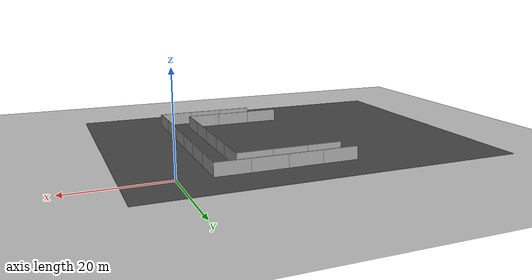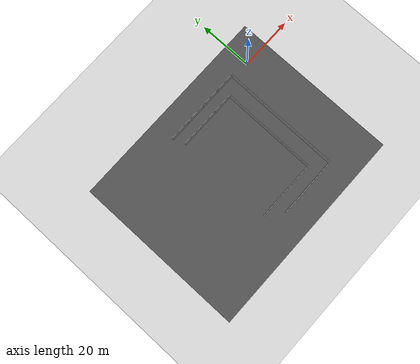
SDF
<sdf version="1.6">
 <world name="default">
  <model name="ground_plane">
   <static>1</static>
   <link name="link">
    <collision name="collision">
     <geometry><plane><normal>0 0 1</normal><size>100 100</size></plane></geometry>
     <surface>
      <contact><collide_bitmask>65535</collide_bitmask></contact>
      <friction><ode><mu>100</mu><mu2>50</mu2></ode></friction>
     </surface>
    </collision>
    <visual name="visual">
     <cast_shadows>0</cast_shadows>
     <geometry><plane><normal>0 0 1</normal><size>100 100</size></plane></geometry>
     <material>
      <script><uri>file://media/materials/scripts/gazebo.material</uri><name>Gazebo/Grey</name></script>
     </material>
    </visual>
   </link>
  </model>
  <model name="grey_wall_clone_6_clone_8">
   <static>1</static>
   <link name="link">
    <pose>0 0 1.4 0 -0 0</pose>
    <collision name="collision"><geometry><box><size>7.5 0.2 2.8</size></box></geometry></collision>
    <visual name="visual">
     <cast_shadows>0</cast_shadows>
     <geometry><box><size>7.5 0.2 2.8</size></box></geometry>
     <material>
      <script>
       <uri>model://grey_wall/materials/scripts</uri>
       <uri>model://grey_wall/materials/textures</uri>
       <name>vrc/grey_wall</name>
      </script>
     </material>
    </visual>
   </link>
   <pose>-10.4256 0.797416 0 0 -0 0</pose>
  </model>
  <model name="asphalt_plane">
   <static>1</static>
   <link name="link">
    <collision name="collision"><geometry><box><size>77.647 62.8353 0.1</size></box></geometry></collision>
    <visual name="visual">
     <cast_shadows>0</cast_shadows>
     <geometry><box><size>77.647 62.8353 0.1</size></box></geometry>
     <material>
      <script>
       <uri>model://asphalt_plane/materials/scripts</uri>
       <uri>model://asphalt_plane/materials/textures</uri>
       <name>vrc/asphalt</name>
      </script>
     </material>
    </visual>
   </link>
   <pose>-28.9718 -21.6905 0 0 -0 0</pose>
  </model>
  <model name="grey_wall_clone_6_clone_8_clone">
   <static>1</static>
   <link name="link">
    <pose>0 0 1.4 0 -0 0</pose>
    <collision name="collision"><geometry><box><size>7.5 0.2 2.8</size></box></geometry></collision>
    <visual name="visual">
     <cast_shadows>0</cast_shadows>
     <geometry><box><size>7.5 0.2 2.8</size></box></geometry>
     <material>
      <script>
       <uri>model://grey_wall/materials/scripts</uri>
       <uri>model://grey_wall/materials/textures</uri>
       <name>vrc/grey_wall</name>
      </script>
     </material>
    </visual>
   </link>
   <pose>-17.6869 0.815596 0 0 -0 0</pose>
  </model>
  <model name="grey_wall_clone_6_clone_8_clone_0">
   <static>1</static>
   <link name="link">
    <pose>0 0 1.4 0 -0 0</pose>
    <collision name="collision"><geometry><box><size>7.5 0.2 2.8</size></box></geometry></collision>
    <visual name="visual">
     <cast_shadows>0</cast_shadows>
     <geometry><box><size>7.5 0.2 2.8</size></box></geometry>
     <material>
      <script>
       <uri>model://grey_wall/materials/scripts</uri>
       <uri>model://grey_wall/materials/textures</uri>
       <name>vrc/grey_wall</name>
      </script>
     </material>
    </visual>
   </link>
   <pose>-25.0194 0.805602 0 0 -0 0</pose>
  </model>
  <model name="grey_wall_clone_6_clone_8_clone_1">
   <static>1</static>
   <link name="link">
    <pose>0 0 1.4 0 -0 0</pose>
    <collision name="collision"><geometry><box><size>7.5 0.2 2.8</size></box></geometry></collision>
    <visual name="visual">
     <cast_shadows>0</cast_shadows>
     <geometry><box><size>7.5 0.2 2.8</size></box></geometry>
     <material>
      <script>
       <uri>model://grey_wall/materials/scripts</uri>
       <uri>model://grey_wall/materials/textures</uri>
       <name>vrc/grey_wall</name>
      </script>
     </material>
    </visual>
   </link>
   <pose>-32.4838 0.814762 0 0 -0 0</pose>
  </model>
  <model name="grey_wall_clone_6_clone_8_clone_5">
   <static>1</static>
   <link name="link">
    <pose>0 0 1.4 0 -0 0</pose>
    <collision name="collision"><geometry><box><size>7.5 0.2 2.8</size></box></geometry></collision>
    <visual name="visual">
     <cast_shadows>0</cast_shadows>
     <geometry><box><size>7.5 0.2 2.8</size></box></geometry>
     <material>
      <script>
       <uri>model://grey_wall/materials/scripts</uri>
       <uri>model://grey_wall/materials/textures</uri>
       <name>vrc/grey_wall</name>
      </script>
     </material>
    </visual>
   </link>
   <pose>-6.80481 -2.85443 0 0 -0 1.56305</pose>
  </model>
  <model name="grey_wall_clone_6_clone_8_clone_5_clone">
   <static>1</static>
   <link name="link">
    <pose>0 0 1.4 0 -0 0</pose>
    <collision name="collision"><geometry><box><size>7.5 0.2 2.8</size></box></geometry></collision>
    <visual name="visual">
     <cast_shadows>0</cast_shadows>
     <geometry><box><size>7.5 0.2 2.8</size></box></geometry>
     <material>
      <script>
       <uri>model://grey_wall/materials/scripts</uri>
       <uri>model://grey_wall/materials/textures</uri>
       <name>vrc/grey_wall</name>
      </script>
     </material>
    </visual>
   </link>
   <pose>-6.87872 -9.95686 0 0 -0 1.56305</pose>
  </model>
  <model name="grey_wall_clone_6_clone_8_clone_5_clone_0">
   <static>1</static>
   <link name="link">
    <pose>0 0 1.4 0 -0 0</pose>
    <collision name="collision"><geometry><box><size>7.5 0.2 2.8</size></box></geometry></collision>
    <visual name="visual">
     <cast_shadows>0</cast_shadows>
     <geometry><box><size>7.5 0.2 2.8</size></box></geometry>
     <material>
      <script>
       <uri>model://grey_wall/materials/scripts</uri>
       <uri>model://grey_wall/materials/textures</uri>
       <name>vrc/grey_wall</name>
      </script>
     </material>
    </visual>
   </link>
   <pose>-6.9205 -17.348 0 0 -0 1.56305</pose>
  </model>
  <model name="grey_wall_clone_6_clone_8_clone_5_clone_1">
   <static>1</static>
   <link name="link">
    <pose>0 0 1.4 0 -0 0</pose>
    <collision name="collision"><geometry><box><size>7.5 0.2 2.8</size></box></geometry></collision>
    <visual name="visual">
     <cast_shadows>0</cast_shadows>
     <geometry><box><size>7.5 0.2 2.8</size></box></geometry>
     <material>
      <script>
       <uri>model://grey_wall/materials/scripts</uri>
       <uri>model://grey_wall/materials/textures</uri>
       <name>vrc/grey_wall</name>
      </script>
     </material>
    </visual>
   </link>
   <pose>-6.97589 -24.6171 0 0 -0 1.56305</pose>
  </model>
  <model name="grey_wall_clone_6_clone_8_clone_5_clone_2">
   <static>1</static>
   <link name="link">
    <pose>0 0 1.4 0 -0 0</pose>
    <collision name="collision"><geometry><box><size>7.5 0.2 2.8</size></box></geometry></collision>
    <visual name="visual">
     <cast_shadows>0</cast_shadows>
     <geometry><box><size>7.5 0.2 2.8</size></box></geometry>
     <material>
      <script>
       <uri>model://grey_wall/materials/scripts</uri>
       <uri>model://grey_wall/materials/textures</uri>
       <name>vrc/grey_wall</name>
      </script>
     </material>
    </visual>
   </link>
   <pose>-7.02281 -32.0062 0 0 -0 1.56305</pose>
  </model>
  <model name="grey_wall_clone_6_clone_8_clone_5_clone_3">
   <static>1</static>
   <link name="link">
    <pose>0 0 1.4 0 -0 0</pose>
    <collision name="collision"><geometry><box><size>7.5 0.2 2.8</size></box></geometry></collision>
    <visual name="visual">
     <cast_shadows>0</cast_shadows>
     <geometry><box><size>7.5 0.2 2.8</size></box></geometry>
     <material>
      <script>
       <uri>model://grey_wall/materials/scripts</uri>
       <uri>model://grey_wall/materials/textures</uri>
       <name>vrc/grey_wall</name>
      </script>
     </material>
    </visual>
   </link>
   <pose>-7.09384 -39.4607 0 0 -0 1.56305</pose>
  </model>
  <model name="grey_wall_clone_6_clone_8_clone_4_clone_3">
   <static>1</static>
   <link name="link">
    <pose>0 0 1.4 0 -0 0</pose>
    <collision name="collision"><geometry><box><size>7.5 0.2 2.8</size></box></geometry></collision>
    <visual name="visual">
     <cast_shadows>0</cast_shadows>
     <geometry><box><size>7.5 0.2 2.8</size></box></geometry>
     <material>
      <script>
       <uri>model://grey_wall/materials/scripts</uri>
       <uri>model://grey_wall/materials/textures</uri>
       <name>vrc/grey_wall</name>
      </script>
     </material>
    </visual>
   </link>
   <pose>-25.4447 -43.2721 0 0 -0 0</pose>
  </model>
  <model name="grey_wall_clone_6_clone_8_clone_4_clone_4">
   <static>1</static>
   <link name="link">
    <pose>0 0 1.4 0 -0 0</pose>
    <collision name="collision"><geometry><box><size>7.5 0.2 2.8</size></box></geometry></collision>
    <visual name="visual">
     <cast_shadows>0</cast_shadows>
     <geometry><box><size>7.5 0.2 2.8</size></box></geometry>
     <material>
      <script>
       <uri>model://grey_wall/materials/scripts</uri>
       <uri>model://grey_wall/materials/textures</uri>
       <name>vrc/grey_wall</name>
      </script>
     </material>
    </visual>
   </link>
   <pose>-18.0915 -43.2752 0 0 -0 0</pose>
  </model>
  <model name="grey_wall_clone_6_clone_8_clone_4_clone_5">
   <static>1</static>
   <link name="link">
    <pose>0 0 1.4 0 -0 0</pose>
    <collision name="collision"><geometry><box><size>7.5 0.2 2.8</size></box></geometry></collision>
    <visual name="visual">
     <cast_shadows>0</cast_shadows>
     <geometry><box><size>7.5 0.2 2.8</size></box></geometry>
     <material>
      <script>
       <uri>model://grey_wall/materials/scripts</uri>
       <uri>model://grey_wall/materials/textures</uri>
       <name>vrc/grey_wall</name>
      </script>
     </material>
    </visual>
   </link>
   <pose>-10.7598 -43.2705 0 0 -0 0</pose>
  </model>
  <model name="grey_wall_clone_6_clone_8_clone_4_clone_5_clone">
   <static>1</static>
   <link name="link">
    <pose>0 0 1.4 0 -0 0</pose>
    <collision name="collision"><geometry><box><size>7.5 0.2 2.8</size></box></geometry></collision>
    <visual name="visual">
     <cast_shadows>0</cast_shadows>
     <geometry><box><size>7.5 0.2 2.8</size></box></geometry>
     <material>
      <script>
       <uri>model://grey_wall/materials/scripts</uri>
       <uri>model://grey_wall/materials/textures</uri>
       <name>vrc/grey_wall</name>
      </script>
     </material>
    </visual>
   </link>
   <pose>-16.5339 -38.6583 0 0 -0 0</pose>
  </model>
  <model name="grey_wall_clone_6_clone_8_clone_4_clone_5_clone_0">
   <static>1</static>
   <link name="link">
    <pose>0 0 1.4 0 -0 0</pose>
    <collision name="collision"><geometry><box><size>7.5 0.2 2.8</size></box></geometry></collision>
    <visual name="visual">
     <cast_shadows>0</cast_shadows>
     <geometry><box><size>7.5 0.2 2.8</size></box></geometry>
     <material>
      <script>
       <uri>model://grey_wall/materials/scripts</uri>
       <uri>model://grey_wall/materials/textures</uri>
       <name>vrc/grey_wall</name>
      </script>
     </material>
    </visual>
   </link>
   <pose>-23.7865 -38.6526 0 0 -0 0</pose>
  </model>
  <model name="grey_wall_clone_6_clone_8_clone_4_clone_5_clone_1">
   <static>1</static>
   <link name="link">
    <pose>0 0 1.4 0 -0 0</pose>
    <collision name="collision"><geometry><box><size>7.5 0.2 2.8</size></box></geometry></collision>
    <visual name="visual">
     <cast_shadows>0</cast_shadows>
     <geometry><box><size>7.5 0.2 2.8</size></box></geometry>
     <material>
      <script>
       <uri>model://grey_wall/materials/scripts</uri>
       <uri>model://grey_wall/materials/textures</uri>
       <name>vrc/grey_wall</name>
      </script>
     </material>
    </visual>
   </link>
   <pose>-31.1523 -38.6568 0 0 -0 0</pose>
  </model>
  <model name="grey_wall_clone_6_clone_8_clone_5_clone_3_clone">
   <static>1</static>
   <link name="link">
    <pose>0 0 1.4 0 -0 0</pose>
    <collision name="collision"><geometry><box><size>7.5 0.2 2.8</size></box></geometry></collision>
    <visual name="visual">
     <cast_shadows>0</cast_shadows>
     <geometry><box><size>7.5 0.2 2.8</size></box></geometry>
     <material>
      <script>
       <uri>model://grey_wall/materials/scripts</uri>
       <uri>model://grey_wall/materials/textures</uri>
       <name>vrc/grey_wall</name>
      </script>
     </material>
    </visual>
   </link>
   <pose>-12.8507 -34.9798 0 0 -0 1.56305</pose>
  </model>
  <model name="grey_wall_clone_6_clone_8_clone_5_clone_3_clone_0">
   <static>1</static>
   <link name="link">
    <pose>0 0 1.4 0 -0 0</pose>
    <collision name="collision"><geometry><box><size>7.5 0.2 2.8</size></box></geometry></collision>
    <visual name="visual">
     <cast_shadows>0</cast_shadows>
     <geometry><box><size>7.5 0.2 2.8</size></box></geometry>
     <material>
      <script>
       <uri>model://grey_wall/materials/scripts</uri>
       <uri>model://grey_wall/materials/textures</uri>
       <name>vrc/grey_wall</name>
      </script>
     </material>
    </visual>
   </link>
   <pose>-12.7782 -27.5855 0 0 -0 1.56305</pose>
  </model>
  <model name="grey_wall_clone_6_clone_8_clone_5_clone_3_clone_1">
   <static>1</static>
   <link name="link">
    <pose>0 0 1.4 0 -0 0</pose>
    <collision name="collision"><geometry><box><size>7.5 0.2 2.8</size></box></geometry></collision>
    <visual name="visual">
     <cast_shadows>0</cast_shadows>
     <geometry><box><size>7.5 0.2 2.8</size></box></geometry>
     <material>
      <script>
       <uri>model://grey_wall/materials/scripts</uri>
       <uri>model://grey_wall/materials/textures</uri>
       <name>vrc/grey_wall</name>
      </script>
     </material>
    </visual>
   </link>
   <pose>-12.7134 -20.3193 0 0 -0 1.56305</pose>
  </model>
  <model name="grey_wall_clone_6_clone_8_clone_5_clone_3_clone_2">
   <static>1</static>
   <link name="link">
    <pose>0 0 1.4 0 -0 0</pose>
    <collision name="collision"><geometry><box><size>7.5 0.2 2.8</size></box></geometry></collision>
    <visual name="visual">
     <cast_shadows>0</cast_shadows>
     <geometry><box><size>7.5 0.2 2.8</size></box></geometry>
     <material>
      <script>
       <uri>model://grey_wall/materials/scripts</uri>
       <uri>model://grey_wall/materials/textures</uri>
       <name>vrc/grey_wall</name>
      </script>
     </material>
    </visual>
   </link>
   <pose>-12.6546 -12.8363 0 0 -0 1.56305</pose>
  </model>
  <model name="grey_wall_clone_6_clone_8_clone_5_clone_3_clone_3">
   <static>1</static>
   <link name="link">
    <pose>0 0 1.4 0 -0 0</pose>
    <collision name="collision"><geometry><box><size>7.5 0.2 2.8</size></box></geometry></collision>
    <visual name="visual">
     <cast_shadows>0</cast_shadows>
     <geometry><box><size>7.5 0.2 2.8</size></box></geometry>
     <material>
      <script>
       <uri>model://grey_wall/materials/scripts</uri>
       <uri>model://grey_wall/materials/textures</uri>
       <name>vrc/grey_wall</name>
      </script>
     </material>
    </visual>
   </link>
   <pose>-12.6007 -7.17139 0 0 -0 1.56305</pose>
  </model>
  <model name="grey_wall_clone_6_clone_8_clone_6">
   <static>1</static>
   <link name="link">
    <pose>0 0 1.4 0 -0 0</pose>
    <collision name="collision"><geometry><box><size>7.5 0.2 2.8</size></box></geometry></collision>
    <visual name="visual">
     <cast_shadows>0</cast_shadows>
     <geometry><box><size>7.5 0.2 2.8</size></box></geometry>
     <material>
      <script>
       <uri>model://grey_wall/materials/scripts</uri>
       <uri>model://grey_wall/materials/textures</uri>
       <name>vrc/grey_wall</name>
      </script>
     </material>
    </visual>
   </link>
   <pose>-16.278 -3.51989 0 0 -0 0</pose>
  </model>
  <model name="grey_wall_clone_6_clone_8_clone_7">
   <static>1</static>
   <link name="link">
    <pose>0 0 1.4 0 -0 0</pose>
    <collision name="collision"><geometry><box><size>7.5 0.2 2.8</size></box></geometry></collision>
    <visual name="visual">
     <cast_shadows>0</cast_shadows>
     <geometry><box><size>7.5 0.2 2.8</size></box></geometry>
     <material>
      <script>
       <uri>model://grey_wall/materials/scripts</uri>
       <uri>model://grey_wall/materials/textures</uri>
       <name>vrc/grey_wall</name>
      </script>
     </material>
    </visual>
   </link>
   <pose>-23.6889 -3.52182 0 0 -0 0</pose>
  </model>
  <model name="grey_wall_clone_6_clone_8_clone_8">
   <static>1</static>
   <link name="link">
    <pose>0 0 1.4 0 -0 0</pose>
    <collision name="collision"><geometry><box><size>7.5 0.2 2.8</size></box></geometry></collision>
    <visual name="visual">
     <cast_shadows>0</cast_shadows>
     <geometry><box><size>7.5 0.2 2.8</size></box></geometry>
     <material>
      <script>
       <uri>model://grey_wall/materials/scripts</uri>
       <uri>model://grey_wall/materials/textures</uri>
       <name>vrc/grey_wall</name>
      </script>
     </material>
    </visual>
   </link>
   <pose>-31.1172 -3.5324 0 0 -0 0</pose>
  </model>
 </world>
</sdf>
